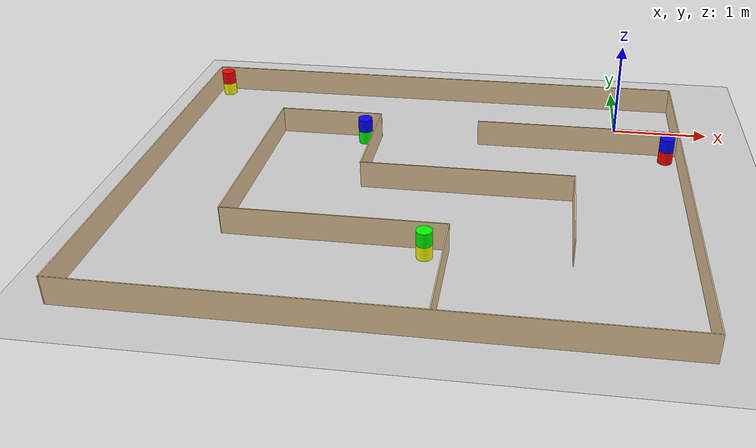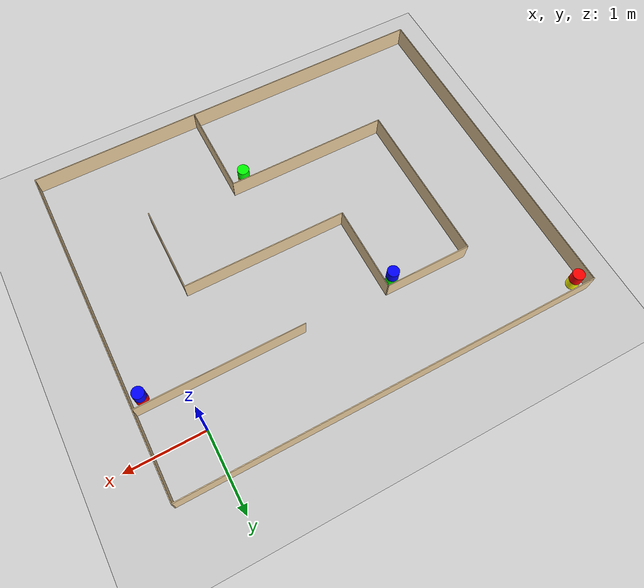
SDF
<sdf version="1.4">
  <world name="default">

    <scene>
      <ambient>0.4 0.4 0.4 1</ambient>
      <background>0.7 0.7 0.7 1</background>
      <shadows>true</shadows>
    </scene>

    <!-- A global light source -->
    <include>
      <uri>model://sun</uri>
    </include>

    <!-- A ground plane -->
    <include>
      <uri>model://ground_plane</uri>
    </include>

    <!-- My Maze -->
    <include>
      <uri>model://maze_0</uri>
	    <pose>-2.05 -1.60 0 0 0 0</pose>
    </include>

    <!-- My Beacons -->
    <include>
      <uri>model://beacon_GB</uri>
	    <pose>-2.7 -0.6 0 0 0 0</pose>
    </include>
    <include>
      <uri>model://beacon_YG</uri>
	    <pose>-1.75 -2.7 0 0 0 0</pose>
    </include>
    <include>
      <uri>model://beacon_RB</uri>
	    <pose>0.5 -0.65 0 0 0 0</pose>
    </include>
    <include>
      <uri>model://beacon_YR</uri>
	    <pose>-4.6 0.45 0 0 0 0</pose>
    </include>

    <physics type="ode">
      <real_time_update_rate>1000.0</real_time_update_rate>
      <max_step_size>0.001</max_step_size>
      <real_time_factor>1</real_time_factor>
      <ode>
        <solver>
          <type>quick</type>
          <iters>150</iters>
          <precon_iters>0</precon_iters>
          <sor>1.400000</sor>
          <use_dynamic_moi_rescaling>1</use_dynamic_moi_rescaling>
        </solver>
        <constraints>
          <cfm>0.00001</cfm>
          <erp>0.2</erp>
          <contact_max_correcting_vel>2000.000000</contact_max_correcting_vel>
          <contact_surface_layer>0.01000</contact_surface_layer>
        </constraints>
      </ode>
    </physics>
  </world>

</sdf>
